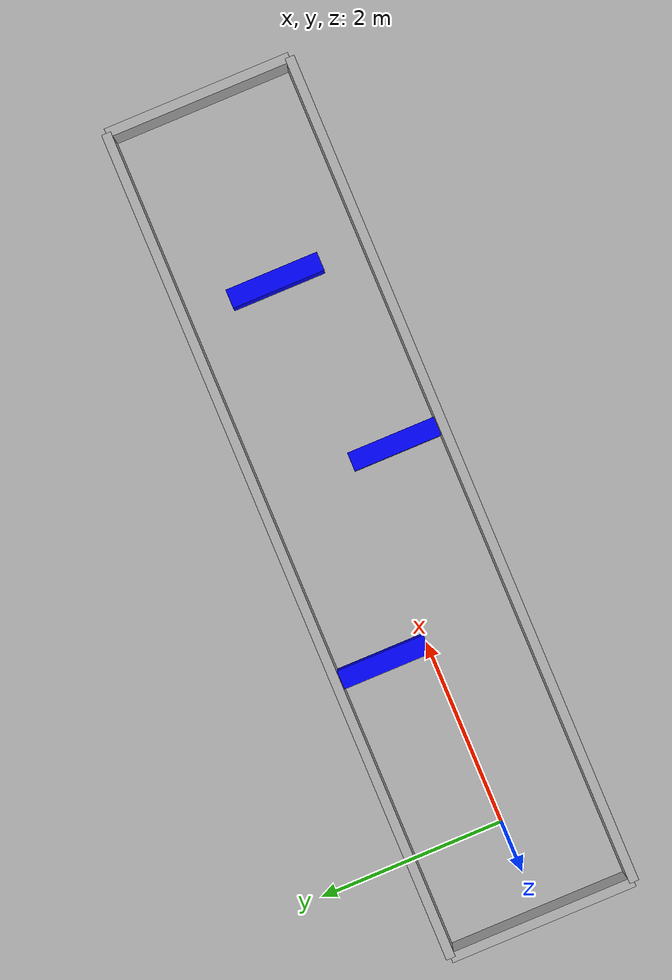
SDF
<?xml version="1.0" ?>
<sdf version="1.8">
  <world name="competition">
    <physics name="1ms" type="ignored">
      <max_step_size>0.001</max_step_size>
      <real_time_factor>1.0</real_time_factor>
    </physics>
    <plugin filename="gz-sim-physics-system" name="gz::sim::systems::Physics"/>
    <plugin filename="gz-sim-user-commands-system" name="gz::sim::systems::UserCommands"/>
    <plugin filename="gz-sim-scene-broadcaster-system" name="gz::sim::systems::SceneBroadcaster"/>

    <!-- Improved Light -->
    <light type="directional" name="sun">
      <cast_shadows>true</cast_shadows>
      <pose>0 0 10 0 0 0</pose>
      <diffuse>1 1 1 1</diffuse>
      <specular>0.3 0.3 0.3 1</specular>
      <attenuation>
        <range>1000</range>
        <constant>0.8</constant>
        <linear>0.02</linear>
        <quadratic>0.002</quadratic>
      </attenuation>
      <direction>-0.3 0.3 -0.8</direction>
    </light>

    <!-- Closed Room -->
    <model name="room">
      <static>true</static>
      <link name="floor">
        <collision name="floor_collision">
          <geometry>
            <plane>
              <size>20 20</size>
            </plane>
          </geometry>
        </collision>
        <visual name="floor_visual">
          <geometry>
            <plane>
              <size>20 20</size>
            </plane>
          </geometry>
          <material>
            <diffuse>0.7 0.7 0.7 1</diffuse>
          </material>
        </visual>
      </link>

      <!-- Walls with Material Properties -->
      <link name="wall1">
        <pose>3.5 1 0.15 0 0 0</pose>
        <collision name="collision">
          <geometry>
            <box>
              <size>9 0.1 0.3</size>
            </box>
          </geometry>
        </collision>
        <visual name="visual">
          <geometry>
            <box>
              <size>9 0.1 0.3</size>
            </box>
          </geometry>
          <material>
            <diffuse>0.7 0.7 0.7 1</diffuse>
          </material>
          <cast_shadows>true</cast_shadows>
        </visual>
      </link>

      <link name="wall2">
        <pose>3.5 -1 0.15 0 0 0</pose>
        <collision name="collision">
          <geometry>
            <box>
              <size>9 0.1 0.3</size>
            </box>
          </geometry>
        </collision>
        <visual name="visual">
          <geometry>
            <box>
              <size>9 0.1 0.3</size>
            </box>
          </geometry>
          <material>
            <diffuse>0.7 0.7 0.7 1</diffuse>
          </material>
          <cast_shadows>true</cast_shadows>
        </visual>
      </link>

      <link name="wall3">
        <pose>8 0 0.15 0 0 0</pose>
        <collision name="collision">
          <geometry>
            <box>
              <size>0.1 2 0.3</size>
            </box>
          </geometry>
        </collision>
        <visual name="visual">
          <geometry>
            <box>
              <size>0.1 2 0.3</size>
            </box>
          </geometry>
          <material>
            <diffuse>0.7 0.7 0.7 1</diffuse>
          </material>
          <cast_shadows>true</cast_shadows>
        </visual>
      </link>

      <link name="wall4">
        <pose>-1 0 0.15 0 0 0</pose>
        <collision name="collision">
          <geometry>
            <box>
              <size>0.1 2 0.3</size>
            </box>
          </geometry>
        </collision>
        <visual name="visual">
          <geometry>
            <box>
              <size>0.1 2 0.3</size>
            </box>
          </geometry>
          <material>
            <diffuse>0.7 0.7 0.7 1</diffuse>
          </material>
          <cast_shadows>true</cast_shadows>
        </visual>
      </link>
    </model>

    <!-- Random Boxes -->
    <model name="box1">
      <pose>2 0.5 0.1 0 0 0</pose>
      <link name="link">
        <collision name="collision">
          <geometry>
            <box>
              <size>0.2 1 0.2</size>
            </box>
          </geometry>
          <surface>
            <contact>
              <ode>
                <soft_cfm>0.01</soft_cfm>
              </ode>
            </contact>
          </surface>
        </collision>
        <visual name="visual">
          <geometry>
            <box>
              <size>0.2 1 0.2</size>
            </box>
          </geometry>
          <material>
            <diffuse>0 0 1 1</diffuse>
          </material>
        </visual>
        <inertial>
          <mass>0.2</mass>
        </inertial>
      </link>
    </model>

    <model name="box2">
      <pose>4 -0.5 0.1 0 0 0</pose>
      <link name="link">
        <collision name="collision">
          <geometry>
            <box>
              <size>0.2 1 0.2</size>
            </box>
          </geometry>
        </collision>
        <visual name="visual">
          <geometry>
            <box>
              <size>0.2 1 0.2</size>
            </box>
          </geometry>
          <material>
            <diffuse>0 0 1 1</diffuse>
          </material>
        </visual>
        <inertial>
          <mass>0.3</mass>
        </inertial>
      </link>
    </model>

    <model name="box3">
      <pose>6 0 0.1 0 0 0</pose>
      <link name="link">
        <collision name="collision">
          <geometry>
            <box>
              <size>0.2 1 0.2</size>
            </box>
          </geometry>
        </collision>
        <visual name="visual">
          <geometry>
            <box>
              <size>0.2 1 0.2</size>
            </box>
          </geometry>
          <material>
            <diffuse>0 0 1 1</diffuse>
          </material>
        </visual>
        <inertial>
          <mass>0.1</mass>
        </inertial>
      </link>
    </model>
  </world>
</sdf>
